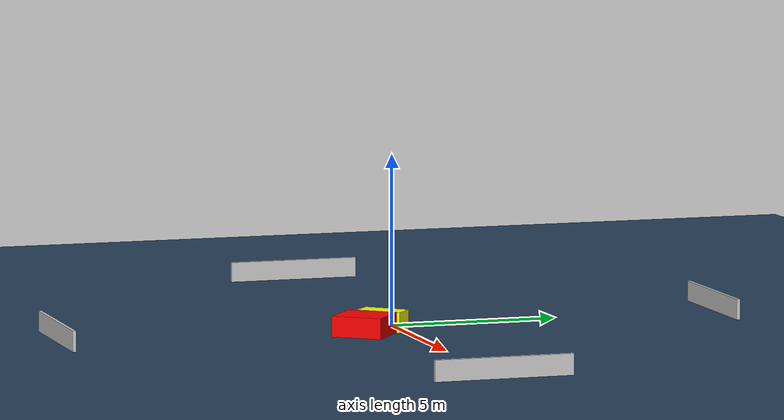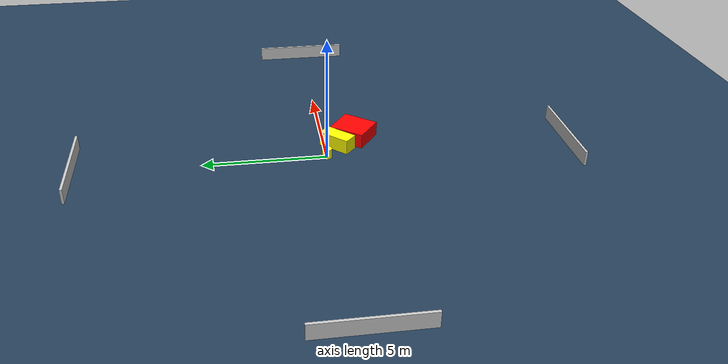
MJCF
<?xml version="1.0" ?>
<mujoco model="generated_environment">
  <option timestep="0.01" integrator="RK4" cone="elliptic"/>
  <default>
    <geom density="1"/>
  </default>
  <asset>
    <texture builtin="gradient" height="3072" name="skybox" rgb1="0.3 0.5 0.7" rgb2="0 0 0" type="skybox" width="512"/>
    <texture builtin="checker" height="300" name="groundplane" rgb1="0.2 0.3 0.4" rgb2="0.1 0.2 0.3" type="2d" width="300"/>
    <material name="groundplane" reflectance="0.2" texrepeat="5 5" texture="groundplane"/>
  </asset>
  <worldbody>
    <light dir="0 0 -1" directional="true" pos="0 0 1.5"/>
    <geom condim="3" friction="0.5 0.005 0.001" material="groundplane" name="floor" pos="0 0 0" size="0 0 0.05" type="plane"/>
    <body name="walls">
      <geom name="wall_1" condim="4" pos="-10.0 0.0 0.3" rgba="0.800000011920929 0.800000011920929 0.800000011920929 1.0" size="0.05 2.0 0.3" type="box"/>
      <geom name="wall_2" condim="4" pos="10.0 0.0 0.3" rgba="0.800000011920929 0.800000011920929 0.800000011920929 1.0" size="0.05 2.0 0.3" type="box"/>
      <geom name="wall_3" condim="4" pos="0.0 -10.0 0.3" rgba="0.800000011920929 0.800000011920929 0.800000011920929 1.0" size="2.0 0.05 0.3" type="box"/>
      <geom name="wall_4" condim="4" pos="0.0 10.0 0.3" rgba="0.800000011920929 0.800000011920929 0.800000011920929 1.0" size="2.0 0.05 0.3" type="box"/>
    </body>
    <body name="robot">
      <joint name="joint_x" type="slide" pos="0 0 0" axis="1 0 0"/>
      <joint name="joint_y" type="slide" pos="0 0 0" axis="0 1 0"/>
      <geom name="robot" type="cylinder" pos="0.0 0.0 0.2" size="0.2 0.2 0.0" mass="5.0" friction="1.0 0.005 0.0001" condim="4" rgba="1.0 1.0 0.0 1.0"/>
    </body>
    <body name="obstacle_1_movable">
      <geom name="obstacle_1_movable" condim="4" pos="0.7750148250168878 -0.5282294400123647 0.3" euler="0 0 137.06355330958573" friction="0.0 0.005 0.001" rgba="1.0 1.0 0.0 1.0" size="0.3093046394196533 0.6757733133504571 0.3" type="box" mass="0.1"/>
      <joint type="free"/>
    </body>
    <body name="obstacle_2_static">
      <geom name="obstacle_2_static" condim="4" pos="1.4651243087747925 -1.309315845436119 0.3" euler="0 0 52.3519439186233" friction="0.0 0.005 0.001" rgba="1.0 0.0 0.0 1.0" size="0.7436121262797675 0.6603696626154771 0.3" type="box"/>
    </body>
  </worldbody>
  <actuator>
    <motor name="actuator_x" joint="joint_x" gear="1" ctrlrange="-1 1"/>
    <motor name="actuator_y" joint="joint_y" gear="1" ctrlrange="-1 1"/>
  </actuator>
</mujoco>
